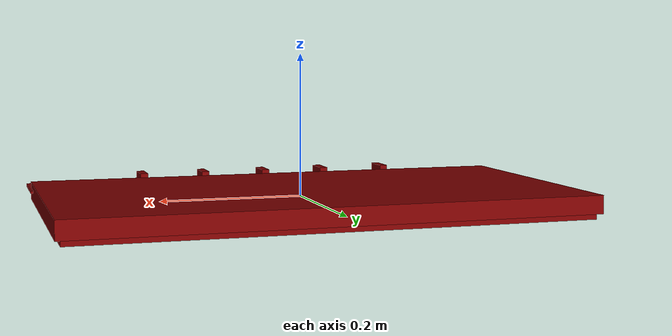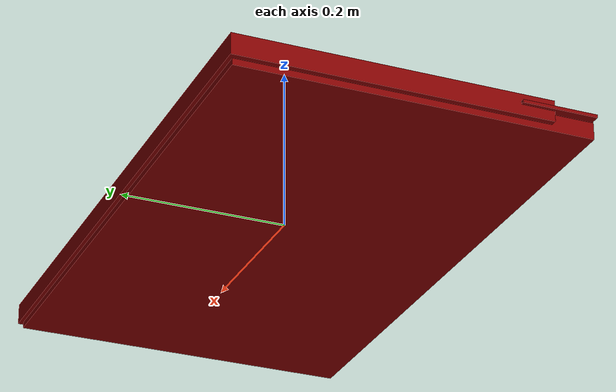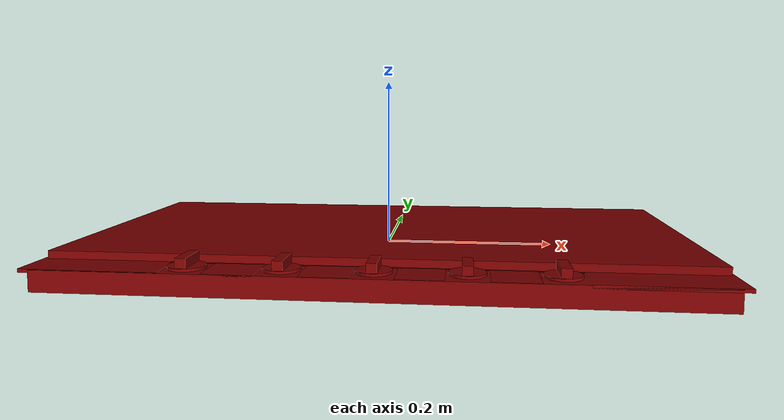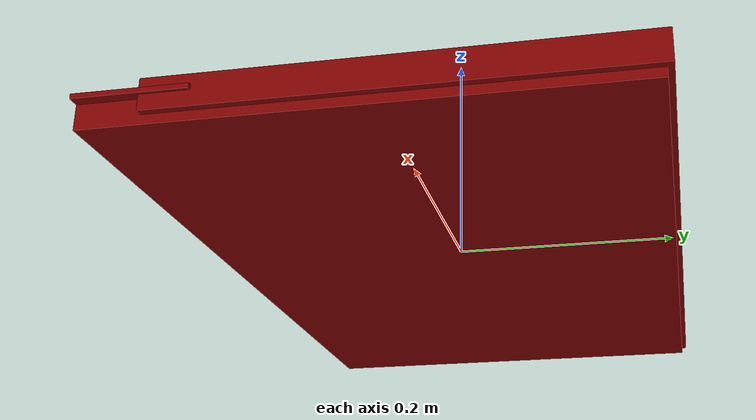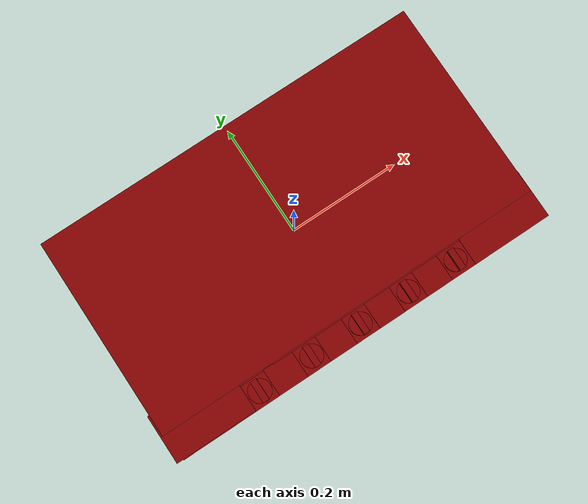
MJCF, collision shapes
<?xml version='1.0' encoding='UTF-8'?>
<mujoco model="model">
  <option timestep="0.002" gravity="0.0 0.0 -9.81"/>
  <compiler angle="radian"/>
  <asset>
    <mesh file="visuals/knob_center.obj" name="knob_center_vis"/>
    <mesh file="visuals/knob_front_left.obj" name="knob_front_left_vis"/>
    <mesh file="visuals/knob_front_right.obj" name="knob_front_right_vis"/>
    <mesh file="visuals/knob_rear_left.obj" name="knob_rear_left_vis"/>
    <mesh file="visuals/knob_rear_right.obj" name="knob_rear_right_vis"/>
    <mesh file="visuals/Body001.obj" name="Body001_vis"/>
    <mesh file="visuals/Body002.obj" name="Body002_vis"/>
    <texture file="visuals/T_BC001.png" name="Body001_material" type="2d"/>
    <material name="Body001_material" rgba="1 1 1 1.0" texture="Body001_material" shininess="0.4472135901451111" specular="1"/>
    <texture file="visuals/T_BC001.png" name="knob_center_material" type="2d"/>
    <material name="knob_center_material" rgba="1 1 1 1.0" texture="knob_center_material" shininess="0.4472135901451111" specular="0.3103448502657381"/>
    <texture file="visuals/T_BC001.png" name="knob_front_left_material" type="2d"/>
    <material name="knob_front_left_material" rgba="1 1 1 1.0" texture="knob_front_left_material" shininess="0.4472135901451111" specular="0.3103448502657381"/>
    <texture file="visuals/T_BC001.png" name="knob_front_right_material" type="2d"/>
    <material name="knob_front_right_material" rgba="1 1 1 1.0" texture="knob_front_right_material" shininess="0.4472135901451111" specular="0.3103448502657381"/>
    <texture file="visuals/T_BC001.png" name="knob_rear_left_material" type="2d"/>
    <material name="knob_rear_left_material" rgba="1 1 1 1.0" texture="knob_rear_left_material" shininess="0.4472135901451111" specular="0.3103448502657381"/>
    <texture file="visuals/T_BC001.png" name="knob_rear_right_material" type="2d"/>
    <material name="knob_rear_right_material" rgba="1 1 1 1.0" texture="knob_rear_right_material" shininess="0.4472135901451111" specular="0.3103448502657381"/>
    <texture file="visuals/T_BC001.png" name="Body002_material" type="2d"/>
    <material name="Body002_material" rgba="1 1 1 1.0" texture="Body002_material" shininess="0.4472135901451111" specular="5"/>
  </asset>
  <default>
    <default class="visual">
      <geom conaffinity="0" contype="0" group="1" type="mesh"/>
    </default>
    <default class="collision">
      <geom group="0" rgba="0.5 0 0 0.5"/>
    </default>
    <default class="spawn">
      <geom group="0" rgba="1 1 1 0.5" contype="0" conaffinity="0"/>
      <site group="0" rgba="1 1 1 0.5"/>
    </default>
    <default class="region">
      <geom group="1" conaffinity="0" contype="0" rgba="0 1 0 0"/>
    </default>
  </default>
  <worldbody>
    <body>
      <body name="object">
        <geom mesh="Body001_vis" type="mesh" solimp="0.998 0.998 0.001" solref="0.001 1" friction="0.95 0.3 0.1" class="visual" material="Body001_material"/>
        <geom class="collision" type="box" pos="-0.28813583 -0.16638283 0.00337146" size="0.0751245766878128 0.0444386787712574 0.0019045494263991714" quat="1.0 0.0 0.0 0.0"/>
        <geom class="collision" type="box" pos="0.28999156 -0.16747157 0.00333294" size="0.0732676312327385 0.04469894990324974 0.0019430917454883456" quat="1.0 0.0 0.0 0.0"/>
        <geom class="collision" type="box" pos="0.00106531 -0.00434250 -0.00706696" size="0.3523796498775482 0.20782798528671265 0.011730697937309742" quat="1.0 0.0 0.0 0.0"/>
        <geom class="collision" type="box" pos="0.14612123 -0.18761241 0.00366933" size="0.024549225345253944 0.024557655677199364 0.0016067030373960733" quat="1.0 0.0 0.0 0.0"/>
        <geom class="collision" type="box" pos="0.05225899 -0.18761241 0.00366930" size="0.024549225345253944 0.024557670578360558 0.0016066738171502948" quat="1.0 0.0 0.0 0.0"/>
        <geom class="collision" type="box" pos="-0.04284529 -0.18761241 0.00366930" size="0.02556147426366806 0.02455768547952175 0.0016066748648881912" quat="1.0 0.0 0.0 0.0"/>
        <geom class="collision" type="box" pos="-0.14043364 -0.18761241 0.00366933" size="0.027516139671206474 0.02455807849764824 0.0016067055985331535" quat="1.0 0.0 0.0 0.0"/>
        <geom class="collision" type="box" pos="-0.00054177 -0.14305633 0.00436129" size="0.21817095577716827 0.021450063213706017 0.0009147481177933514" quat="1.0 0.0 0.0 0.0"/>
        <body name="knob_center">
          <joint axis="0.0 0.0 1.0" pos="0.00411063 -0.18759118 0.01275586" limited="true" name="knob_center_joint" range="0.0 3.490658503988659" type="hinge" damping="0.2" armature="0.01" frictionloss="1"/>
          <geom mesh="knob_center_vis" type="mesh" solimp="0.998 0.998 0.001" solref="0.001 1" friction="0.95 0.3 0.1" class="visual" material="knob_center_material"/>
          <geom class="collision" type="cylinder" pos="0.00480273 -0.18758310 0.00727141" size="0.019496535882353783 0.0014805382816120982" quat="1.0 0.0 0.0 0.0" friction="100 0.5 0.01"/>
          <geom class="collision" type="box" pos="0.00479777 -0.18707226 0.01400510" size="0.0055315857753157616 0.018967404961586 0.005083708558231592" quat="1.0 0.0 0.0 0.0" name="knob_center_main" friction="100 0.5 0.01"/>
        </body>
        <body name="knob_front_left">
          <joint axis="0.0 0.0 1.0" pos="-0.18964076 -0.18762493 0.01276156" limited="true" name="knob_front_left_joint" range="0.0 3.490658503988659" type="hinge" damping="0.2" armature="0.01" frictionloss="1"/>
          <geom mesh="knob_front_left_vis" type="mesh" solimp="0.998 0.998 0.001" solref="0.001 1" friction="0.95 0.3 0.1" class="visual" material="knob_front_left_material"/>
          <geom class="collision" type="cylinder" pos="-0.19024011 -0.18773565 0.00710645" size="0.020140523090958595 0.001558757503516972" quat="1.0 0.0 0.0 0.0" friction="100 0.5 0.01"/>
          <geom class="collision" type="box" pos="-0.19019648 -0.18750843 0.01417008" size="0.005714186001569033 0.019593531265854836 0.005329487845301628" quat="1.0 0.0 0.0 0.0" name="knob_front_left_main" friction="100 0.5 0.01"/>
        </body>
        <body name="knob_front_right">
          <joint axis="0.0 0.0 1.0" pos="0.19270384 -0.18753318 0.01275206" limited="true" name="knob_front_right_joint" range="0.0 3.490658503988659" type="hinge" damping="0.2" armature="0.01" frictionloss="1"/>
          <geom mesh="knob_front_right_vis" type="mesh" solimp="0.998 0.998 0.001" solref="0.001 1" friction="0.95 0.3 0.1" class="visual" material="knob_front_right_material"/>
          <geom class="collision" type="cylinder" pos="0.19267158 -0.18742198 0.00726491" size="0.019521916285157204 0.0014836209593340755" quat="1.0 0.0 0.0 0.0" friction="100 0.5 0.01"/>
          <geom class="collision" type="box" pos="0.19318451 -0.18749899 0.01401163" size="0.005538681522011757 0.018991736695170403 0.00509310606867075" quat="1.0 0.0 0.0 0.0" name="knob_front_right_main" friction="100 0.5 0.01"/>
        </body>
        <body name="knob_rear_left">
          <joint axis="0.0 0.0 1.0" pos="-0.08995538 -0.18754975 0.01275357" limited="true" name="knob_rear_left_joint" range="0.0 3.490658503988659" type="hinge" damping="0.2" armature="0.01" frictionloss="1"/>
          <geom mesh="knob_rear_left_vis" type="mesh" solimp="0.998 0.998 0.001" solref="0.001 1" friction="0.95 0.3 0.1" class="visual" material="knob_rear_left_material"/>
          <geom class="collision" type="cylinder" pos="-0.08981052 -0.18720858 0.00719654" size="0.019788820296525955 0.0015160393668338656" quat="1.0 0.0 0.0 0.0" friction="100 0.5 0.01"/>
          <geom class="collision" type="box" pos="-0.08985190 -0.18719451 0.01407999" size="0.005614409688860178 0.01925140619277954 0.005195101257413626" quat="1.0 0.0 0.0 0.0" name="knob_rear_left_main" friction="100 0.5 0.01"/>
        </body>
        <body name="knob_rear_right">
          <joint axis="0.0 0.0 1.0" pos="0.09888817 -0.18750942 0.01275500" limited="true" name="knob_rear_right_joint" range="0.0 3.490658503988659" type="hinge" damping="0.2" armature="0.01" frictionloss="1"/>
          <geom mesh="knob_rear_right_vis" type="mesh" solimp="0.998 0.998 0.001" solref="0.001 1" friction="0.95 0.3 0.1" class="visual" material="knob_rear_right_material"/>
          <geom class="collision" type="cylinder" pos="0.09901419 -0.18728840 0.00727758" size="0.019472436979413033 0.0014776111347600818" quat="1.0 0.0 0.0 0.0" friction="100 0.5 0.01"/>
          <geom class="collision" type="box" pos="0.09915873 -0.18744788 0.01399895" size="0.005524749401956797 0.01894395798444748 0.0050742062740027905" quat="1.0 0.0 0.0 0.0" name="knob_rear_right_main" friction="100 0.5 0.01"/>
        </body>
        <body name="Body002">
          <geom mesh="Body002_vis" type="mesh" solimp="0.998 0.998 0.001" solref="0.001 1" friction="0.95 0.3 0.1" class="visual" material="Body002_material"/>
          <geom class="collision" type="box" pos="0.00069567 0.02321664 0.00143281" size="0.3594398498535156 0.1850607693195343 0.012610304169356823" quat="1.0 0.0 0.0 0.0"/>
        </body>
        <site type="cylinder" rgba="0.3 0.4 1 0.5" size="0.03745981678366661 0.002486850367859006" pos="0.00015866 0.05000529 0.00568537" name="burner_on_center"/>
        <site type="cylinder" rgba="0.3 0.4 1 0.5" size="0.02907802164554596 0.003863085061311722" pos="-0.22942518 -0.06691027 0.00486764" name="burner_on_front_left"/>
        <site type="cylinder" rgba="0.3 0.4 1 0.5" size="0.02907802164554596 0.0042644646018743515" pos="-0.22942518 0.08998244 0.00451344" name="burner_on_rear_left"/>
        <site type="cylinder" rgba="0.3 0.4 1 0.5" size="0.022008158266544342 0.0031790260691195726" pos="0.22896278 0.08977943 0.00039701" name="burner_on_rear_right"/>
        <site type="cylinder" rgba="0.3 0.4 1 0.5" size="0.03311452642083168 0.004783322103321552" pos="0.22916579 -0.06691027 0.00492176" name="burner_on_front_right"/>
        <site type="cylinder" rgba="0.5 0 0 0" size="0.03971847891807556 4.999998054699972e-05" pos="0.00028196 0.05062176 0.01404308" name="burner_center_place_site"/>
        <site type="cylinder" rgba="0.5 0 0 0" size="0.02907802164554596 4.9999951443169266e-05" pos="-0.22942518 -0.06691027 0.01404308" name="burner_front_left_place_site"/>
        <site type="cylinder" rgba="0.5 0 0 0" size="0.03311452642083168 4.999994416721165e-05" pos="0.22916579 -0.06691027 0.01404308" name="burner_front_right_place_site"/>
        <site type="cylinder" rgba="0.5 0 0 0" size="0.02907802164554596 5.0000013288808987e-05" pos="-0.22942518 0.08998244 0.01404308" name="burner_rear_left_place_site"/>
        <site type="cylinder" rgba="0.5 0 0 0" size="0.022008158266544342 4.999995871912688e-05" pos="0.22896278 0.08977943 0.01404308" name="burner_rear_right_place_site"/>
        <geom class="region" name="reg_main" type="box" pos="0.0 0.0 -0.006760839999999999" size="0.36426039 0.21317048 0.01303685"/>
      </body>
    </body>
  </worldbody>
  <actuator>
    <motor name="knob_center_joint_actuator" joint="knob_center_joint" gear="10"/>
    <motor name="knob_front_left_joint_actuator" joint="knob_front_left_joint" gear="10"/>
    <motor name="knob_front_right_joint_actuator" joint="knob_front_right_joint" gear="10"/>
    <motor name="knob_rear_left_joint_actuator" joint="knob_rear_left_joint" gear="10"/>
    <motor name="knob_rear_right_joint_actuator" joint="knob_rear_right_joint" gear="10"/>
  </actuator>
</mujoco>
